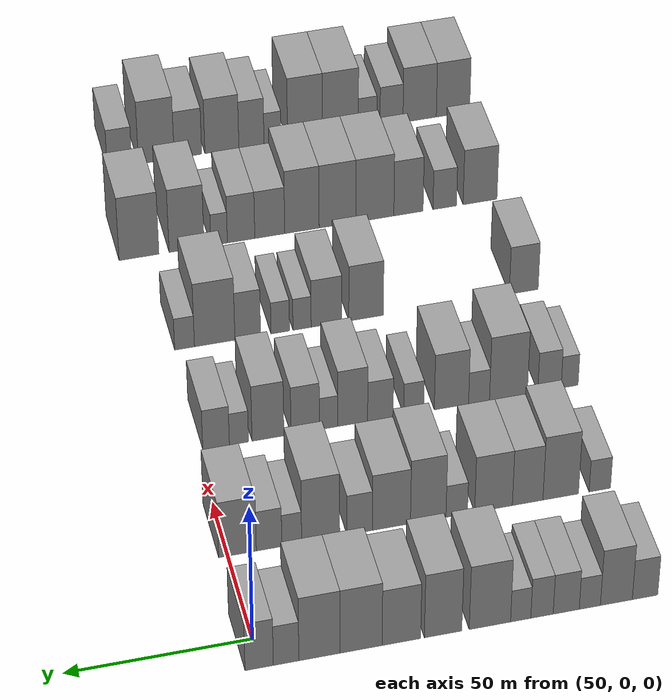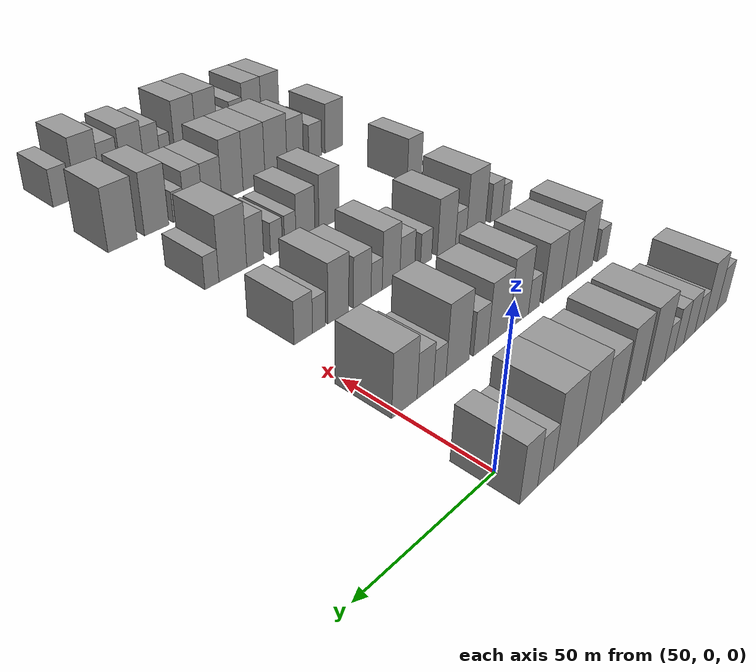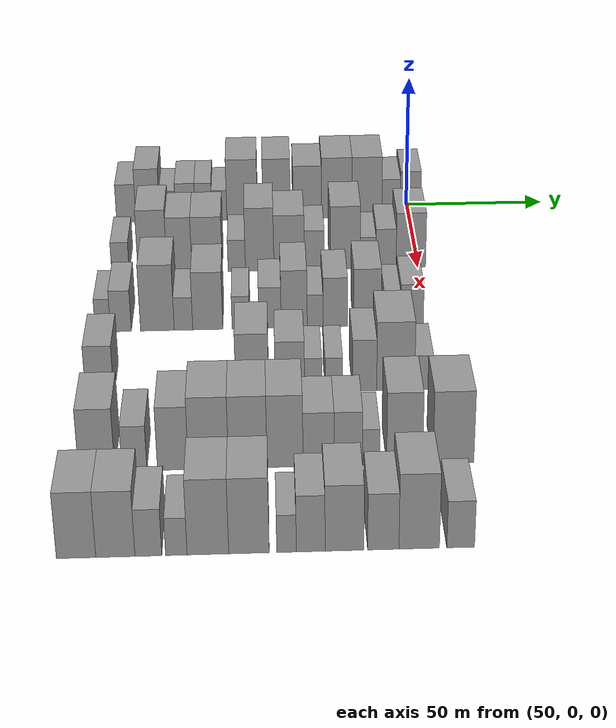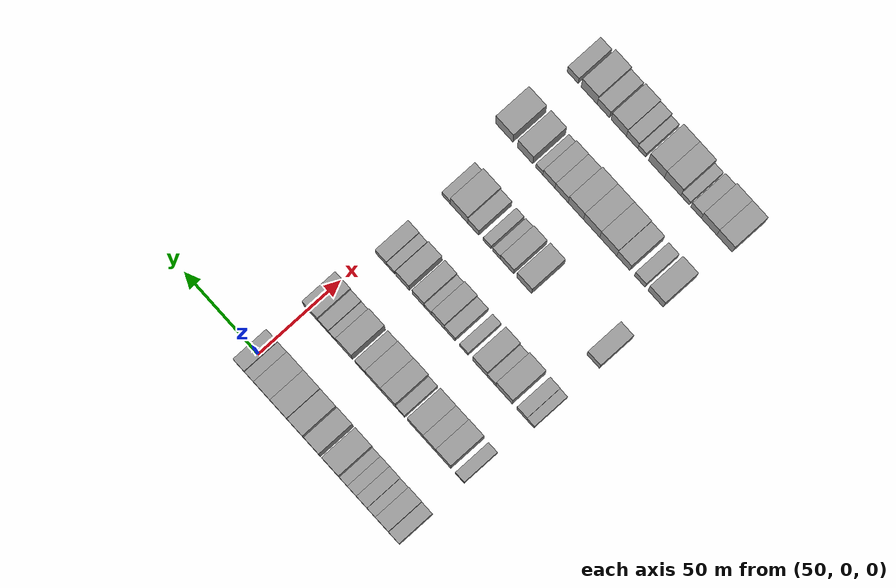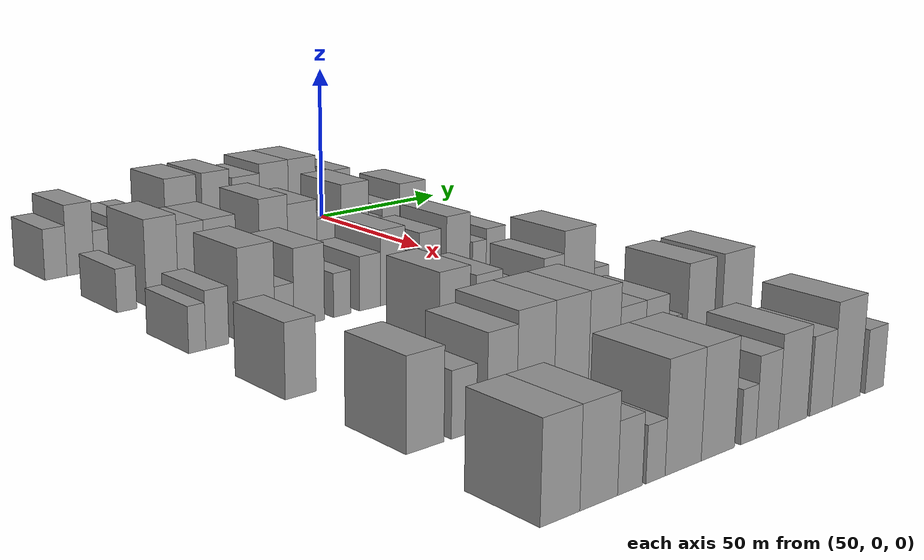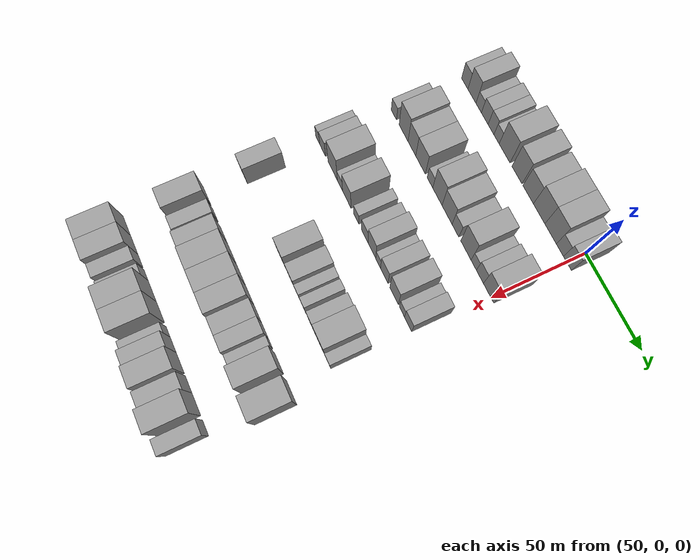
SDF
<sdf version="1.6">
 <world name="default">
  <model name="building_56">
   <static>1</static>
   <pose>50.0000 -103.0972 0 0.000000 0.000000 0.000000</pose>
   <link name="link">
    <pose>0 0 7.50 0 0 0</pose>
    <collision name="collision"><geometry><box><size>20.0000 6.9502 15.0000</size></box></geometry></collision>
    <visual name="visual">
     <cast_shadows>0</cast_shadows>
     <geometry><box><size>20.0000 6.9502 15.0000</size></box></geometry>
     <material>
      <script>
       <uri>model://grey_wall/materials/scripts</uri>
       <uri>model://grey_wall/materials/textures</uri>
       <name>vrc/grey_wall</name>
      </script>
     </material>
    </visual>
   </link>
  </model>
  <model name="building_57">
   <static>1</static>
   <pose>50.0000 -95.2676 0 0.000000 0.000000 0.000000</pose>
   <link name="link">
    <pose>0 0 10.50 0 0 0</pose>
    <collision name="collision"><geometry><box><size>20.0000 8.7089 21.0000</size></box></geometry></collision>
    <visual name="visual">
     <cast_shadows>0</cast_shadows>
     <geometry><box><size>20.0000 8.7089 21.0000</size></box></geometry>
     <material>
      <script>
       <uri>model://grey_wall/materials/scripts</uri>
       <uri>model://grey_wall/materials/textures</uri>
       <name>vrc/grey_wall</name>
      </script>
     </material>
    </visual>
   </link>
  </model>
  <model name="building_58">
   <static>1</static>
   <pose>50.0000 -88.0354 0 0.000000 0.000000 0.000000</pose>
   <link name="link">
    <pose>0 0 6.00 0 0 0</pose>
    <collision name="collision"><geometry><box><size>20.0000 5.7555 12.0000</size></box></geometry></collision>
    <visual name="visual">
     <cast_shadows>0</cast_shadows>
     <geometry><box><size>20.0000 5.7555 12.0000</size></box></geometry>
     <material>
      <script>
       <uri>model://grey_wall/materials/scripts</uri>
       <uri>model://grey_wall/materials/textures</uri>
       <name>vrc/grey_wall</name>
      </script>
     </material>
    </visual>
   </link>
  </model>
  <model name="building_59">
   <static>1</static>
   <pose>50.0000 -81.6171 0 0.000000 0.000000 0.000000</pose>
   <link name="link">
    <pose>0 0 7.50 0 0 0</pose>
    <collision name="collision"><geometry><box><size>20.0000 7.0811 15.0000</size></box></geometry></collision>
    <visual name="visual">
     <cast_shadows>0</cast_shadows>
     <geometry><box><size>20.0000 7.0811 15.0000</size></box></geometry>
     <material>
      <script>
       <uri>model://grey_wall/materials/scripts</uri>
       <uri>model://grey_wall/materials/textures</uri>
       <name>vrc/grey_wall</name>
      </script>
     </material>
    </visual>
   </link>
  </model>
  <model name="building_60">
   <static>1</static>
   <pose>50.0000 -75.0385 0 0.000000 0.000000 0.000000</pose>
   <link name="link">
    <pose>0 0 7.50 0 0 0</pose>
    <collision name="collision"><geometry><box><size>20.0000 6.0762 15.0000</size></box></geometry></collision>
    <visual name="visual">
     <cast_shadows>0</cast_shadows>
     <geometry><box><size>20.0000 6.0762 15.0000</size></box></geometry>
     <material>
      <script>
       <uri>model://grey_wall/materials/scripts</uri>
       <uri>model://grey_wall/materials/textures</uri>
       <name>vrc/grey_wall</name>
      </script>
     </material>
    </visual>
   </link>
  </model>
  <model name="building_61">
   <static>1</static>
   <pose>50.0000 -69.2660 0 0.000000 0.000000 0.000000</pose>
   <link name="link">
    <pose>0 0 6.00 0 0 0</pose>
    <collision name="collision"><geometry><box><size>20.0000 5.4688 12.0000</size></box></geometry></collision>
    <visual name="visual">
     <cast_shadows>0</cast_shadows>
     <geometry><box><size>20.0000 5.4688 12.0000</size></box></geometry>
     <material>
      <script>
       <uri>model://grey_wall/materials/scripts</uri>
       <uri>model://grey_wall/materials/textures</uri>
       <name>vrc/grey_wall</name>
      </script>
     </material>
    </visual>
   </link>
  </model>
  <model name="building_62">
   <static>1</static>
   <pose>50.0000 -60.9565 0 0.000000 0.000000 0.000000</pose>
   <link name="link">
    <pose>0 0 12.00 0 0 0</pose>
    <collision name="collision"><geometry><box><size>20.0000 11.1501 24.0000</size></box></geometry></collision>
    <visual name="visual">
     <cast_shadows>0</cast_shadows>
     <geometry><box><size>20.0000 11.1501 24.0000</size></box></geometry>
     <material>
      <script>
       <uri>model://grey_wall/materials/scripts</uri>
       <uri>model://grey_wall/materials/textures</uri>
       <name>vrc/grey_wall</name>
      </script>
     </material>
    </visual>
   </link>
  </model>
  <model name="building_63">
   <static>1</static>
   <pose>50.0000 -48.3628 0 0.000000 0.000000 0.000000</pose>
   <link name="link">
    <pose>0 0 12.00 0 0 0</pose>
    <collision name="collision"><geometry><box><size>20.0000 10.0373 24.0000</size></box></geometry></collision>
    <visual name="visual">
     <cast_shadows>0</cast_shadows>
     <geometry><box><size>20.0000 10.0373 24.0000</size></box></geometry>
     <material>
      <script>
       <uri>model://grey_wall/materials/scripts</uri>
       <uri>model://grey_wall/materials/textures</uri>
       <name>vrc/grey_wall</name>
      </script>
     </material>
    </visual>
   </link>
  </model>
  <model name="building_64">
   <static>1</static>
   <pose>50.0000 -37.1862 0 0.000000 0.000000 0.000000</pose>
   <link name="link">
    <pose>0 0 10.50 0 0 0</pose>
    <collision name="collision"><geometry><box><size>20.0000 10.3160 21.0000</size></box></geometry></collision>
    <visual name="visual">
     <cast_shadows>0</cast_shadows>
     <geometry><box><size>20.0000 10.3160 21.0000</size></box></geometry>
     <material>
      <script>
       <uri>model://grey_wall/materials/scripts</uri>
       <uri>model://grey_wall/materials/textures</uri>
       <name>vrc/grey_wall</name>
      </script>
     </material>
    </visual>
   </link>
  </model>
  <model name="building_65">
   <static>1</static>
   <pose>50.0000 -26.4524 0 0.000000 0.000000 0.000000</pose>
   <link name="link">
    <pose>0 0 12.00 0 0 0</pose>
    <collision name="collision"><geometry><box><size>20.0000 11.1516 24.0000</size></box></geometry></collision>
    <visual name="visual">
     <cast_shadows>0</cast_shadows>
     <geometry><box><size>20.0000 11.1516 24.0000</size></box></geometry>
     <material>
      <script>
       <uri>model://grey_wall/materials/scripts</uri>
       <uri>model://grey_wall/materials/textures</uri>
       <name>vrc/grey_wall</name>
      </script>
     </material>
    </visual>
   </link>
  </model>
  <model name="building_66">
   <static>1</static>
   <pose>50.0000 -15.3967 0 0.000000 0.000000 0.000000</pose>
   <link name="link">
    <pose>0 0 12.00 0 0 0</pose>
    <collision name="collision"><geometry><box><size>20.0000 10.9597 24.0000</size></box></geometry></collision>
    <visual name="visual">
     <cast_shadows>0</cast_shadows>
     <geometry><box><size>20.0000 10.9597 24.0000</size></box></geometry>
     <material>
      <script>
       <uri>model://grey_wall/materials/scripts</uri>
       <uri>model://grey_wall/materials/textures</uri>
       <name>vrc/grey_wall</name>
      </script>
     </material>
    </visual>
   </link>
  </model>
  <model name="building_67">
   <static>1</static>
   <pose>50.0000 -6.5443 0 0.000000 0.000000 0.000000</pose>
   <link name="link">
    <pose>0 0 7.50 0 0 0</pose>
    <collision name="collision"><geometry><box><size>20.0000 6.7450 15.0000</size></box></geometry></collision>
    <visual name="visual">
     <cast_shadows>0</cast_shadows>
     <geometry><box><size>20.0000 6.7450 15.0000</size></box></geometry>
     <material>
      <script>
       <uri>model://grey_wall/materials/scripts</uri>
       <uri>model://grey_wall/materials/textures</uri>
       <name>vrc/grey_wall</name>
      </script>
     </material>
    </visual>
   </link>
  </model>
  <model name="building_68">
   <static>1</static>
   <pose>50.0000 0.5645 0 0.000000 0.000000 0.000000</pose>
   <link name="link">
    <pose>0 0 9.00 0 0 0</pose>
    <collision name="collision"><geometry><box><size>20.0000 7.4726 18.0000</size></box></geometry></collision>
    <visual name="visual">
     <cast_shadows>0</cast_shadows>
     <geometry><box><size>20.0000 7.4726 18.0000</size></box></geometry>
     <material>
      <script>
       <uri>model://grey_wall/materials/scripts</uri>
       <uri>model://grey_wall/materials/textures</uri>
       <name>vrc/grey_wall</name>
      </script>
     </material>
    </visual>
   </link>
  </model>
  <model name="building_200">
   <static>1</static>
   <pose>90.0000 -102.6049 0 0.000000 0.000000 0.000000</pose>
   <link name="link">
    <pose>0 0 6.00 0 0 0</pose>
    <collision name="collision"><geometry><box><size>20.0000 5.9962 12.0000</size></box></geometry></collision>
    <visual name="visual">
     <cast_shadows>0</cast_shadows>
     <geometry><box><size>20.0000 5.9962 12.0000</size></box></geometry>
     <material>
      <script>
       <uri>model://grey_wall/materials/scripts</uri>
       <uri>model://grey_wall/materials/textures</uri>
       <name>vrc/grey_wall</name>
      </script>
     </material>
    </visual>
   </link>
  </model>
  <model name="building_201">
   <static>1</static>
   <pose>90.0000 -91.6296 0 0.000000 0.000000 0.000000</pose>
   <link name="link">
    <pose>0 0 12.00 0 0 0</pose>
    <collision name="collision"><geometry><box><size>20.0000 9.9545 24.0000</size></box></geometry></collision>
    <visual name="visual">
     <cast_shadows>0</cast_shadows>
     <geometry><box><size>20.0000 9.9545 24.0000</size></box></geometry>
     <material>
      <script>
       <uri>model://grey_wall/materials/scripts</uri>
       <uri>model://grey_wall/materials/textures</uri>
       <name>vrc/grey_wall</name>
      </script>
     </material>
    </visual>
   </link>
  </model>
  <model name="building_202">
   <static>1</static>
   <pose>90.0000 -82.3786 0 0.000000 0.000000 0.000000</pose>
   <link name="link">
    <pose>0 0 10.50 0 0 0</pose>
    <collision name="collision"><geometry><box><size>20.0000 8.5473 21.0000</size></box></geometry></collision>
    <visual name="visual">
     <cast_shadows>0</cast_shadows>
     <geometry><box><size>20.0000 8.5473 21.0000</size></box></geometry>
     <material>
      <script>
       <uri>model://grey_wall/materials/scripts</uri>
       <uri>model://grey_wall/materials/textures</uri>
       <name>vrc/grey_wall</name>
      </script>
     </material>
    </visual>
   </link>
  </model>
  <model name="building_203">
   <static>1</static>
   <pose>90.0000 -72.8640 0 0.000000 0.000000 0.000000</pose>
   <link name="link">
    <pose>0 0 10.50 0 0 0</pose>
    <collision name="collision"><geometry><box><size>20.0000 10.4819 21.0000</size></box></geometry></collision>
    <visual name="visual">
     <cast_shadows>0</cast_shadows>
     <geometry><box><size>20.0000 10.4819 21.0000</size></box></geometry>
     <material>
      <script>
       <uri>model://grey_wall/materials/scripts</uri>
       <uri>model://grey_wall/materials/textures</uri>
       <name>vrc/grey_wall</name>
      </script>
     </material>
    </visual>
   </link>
  </model>
  <model name="building_204">
   <static>1</static>
   <pose>90.0000 -62.6408 0 0.000000 0.000000 0.000000</pose>
   <link name="link">
    <pose>0 0 6.00 0 0 0</pose>
    <collision name="collision"><geometry><box><size>20.0000 5.9647 12.0000</size></box></geometry></collision>
    <visual name="visual">
     <cast_shadows>0</cast_shadows>
     <geometry><box><size>20.0000 5.9647 12.0000</size></box></geometry>
     <material>
      <script>
       <uri>model://grey_wall/materials/scripts</uri>
       <uri>model://grey_wall/materials/textures</uri>
       <name>vrc/grey_wall</name>
      </script>
     </material>
    </visual>
   </link>
  </model>
  <model name="building_205">
   <static>1</static>
   <pose>90.0000 -54.7404 0 0.000000 0.000000 0.000000</pose>
   <link name="link">
    <pose>0 0 12.00 0 0 0</pose>
    <collision name="collision"><geometry><box><size>20.0000 9.8361 24.0000</size></box></geometry></collision>
    <visual name="visual">
     <cast_shadows>0</cast_shadows>
     <geometry><box><size>20.0000 9.8361 24.0000</size></box></geometry>
     <material>
      <script>
       <uri>model://grey_wall/materials/scripts</uri>
       <uri>model://grey_wall/materials/textures</uri>
       <name>vrc/grey_wall</name>
      </script>
     </material>
    </visual>
   </link>
  </model>
  <model name="building_206">
   <static>1</static>
   <pose>90.0000 -44.5728 0 0.000000 0.000000 0.000000</pose>
   <link name="link">
    <pose>0 0 10.50 0 0 0</pose>
    <collision name="collision"><geometry><box><size>20.0000 10.4991 21.0000</size></box></geometry></collision>
    <visual name="visual">
     <cast_shadows>0</cast_shadows>
     <geometry><box><size>20.0000 10.4991 21.0000</size></box></geometry>
     <material>
      <script>
       <uri>model://grey_wall/materials/scripts</uri>
       <uri>model://grey_wall/materials/textures</uri>
       <name>vrc/grey_wall</name>
      </script>
     </material>
    </visual>
   </link>
  </model>
  <model name="building_207">
   <static>1</static>
   <pose>90.0000 -35.8467 0 0.000000 0.000000 0.000000</pose>
   <link name="link">
    <pose>0 0 7.50 0 0 0</pose>
    <collision name="collision"><geometry><box><size>20.0000 6.9532 15.0000</size></box></geometry></collision>
    <visual name="visual">
     <cast_shadows>0</cast_shadows>
     <geometry><box><size>20.0000 6.9532 15.0000</size></box></geometry>
     <material>
      <script>
       <uri>model://grey_wall/materials/scripts</uri>
       <uri>model://grey_wall/materials/textures</uri>
       <name>vrc/grey_wall</name>
      </script>
     </material>
    </visual>
   </link>
  </model>
  <model name="building_208">
   <static>1</static>
   <pose>90.0000 -25.1551 0 0.000000 0.000000 0.000000</pose>
   <link name="link">
    <pose>0 0 12.00 0 0 0</pose>
    <collision name="collision"><geometry><box><size>20.0000 10.4300 24.0000</size></box></geometry></collision>
    <visual name="visual">
     <cast_shadows>0</cast_shadows>
     <geometry><box><size>20.0000 10.4300 24.0000</size></box></geometry>
     <material>
      <script>
       <uri>model://grey_wall/materials/scripts</uri>
       <uri>model://grey_wall/materials/textures</uri>
       <name>vrc/grey_wall</name>
      </script>
     </material>
    </visual>
   </link>
  </model>
  <model name="building_209">
   <static>1</static>
   <pose>90.0000 -17.2387 0 0.000000 0.000000 0.000000</pose>
   <link name="link">
    <pose>0 0 6.00 0 0 0</pose>
    <collision name="collision"><geometry><box><size>20.0000 5.4028 12.0000</size></box></geometry></collision>
    <visual name="visual">
     <cast_shadows>0</cast_shadows>
     <geometry><box><size>20.0000 5.4028 12.0000</size></box></geometry>
     <material>
      <script>
       <uri>model://grey_wall/materials/scripts</uri>
       <uri>model://grey_wall/materials/textures</uri>
       <name>vrc/grey_wall</name>
      </script>
     </material>
    </visual>
   </link>
  </model>
  <model name="building_210">
   <static>1</static>
   <pose>90.0000 -11.0630 0 0.000000 0.000000 0.000000</pose>
   <link name="link">
    <pose>0 0 7.50 0 0 0</pose>
    <collision name="collision"><geometry><box><size>20.0000 6.9486 15.0000</size></box></geometry></collision>
    <visual name="visual">
     <cast_shadows>0</cast_shadows>
     <geometry><box><size>20.0000 6.9486 15.0000</size></box></geometry>
     <material>
      <script>
       <uri>model://grey_wall/materials/scripts</uri>
       <uri>model://grey_wall/materials/textures</uri>
       <name>vrc/grey_wall</name>
      </script>
     </material>
    </visual>
   </link>
  </model>
  <model name="building_211">
   <static>1</static>
   <pose>90.0000 -2.4763 0 0.000000 0.000000 0.000000</pose>
   <link name="link">
    <pose>0 0 10.50 0 0 0</pose>
    <collision name="collision"><geometry><box><size>20.0000 10.2248 21.0000</size></box></geometry></collision>
    <visual name="visual">
     <cast_shadows>0</cast_shadows>
     <geometry><box><size>20.0000 10.2248 21.0000</size></box></geometry>
     <material>
      <script>
       <uri>model://grey_wall/materials/scripts</uri>
       <uri>model://grey_wall/materials/textures</uri>
       <name>vrc/grey_wall</name>
      </script>
     </material>
    </visual>
   </link>
  </model>
  <model name="building_336">
   <static>1</static>
   <pose>130.0000 -105.7095 0 0.000000 0.000000 0.000000</pose>
   <link name="link">
    <pose>0 0 6.00 0 0 0</pose>
    <collision name="collision"><geometry><box><size>20.0000 4.9028 12.0000</size></box></geometry></collision>
    <visual name="visual">
     <cast_shadows>0</cast_shadows>
     <geometry><box><size>20.0000 4.9028 12.0000</size></box></geometry>
     <material>
      <script>
       <uri>model://grey_wall/materials/scripts</uri>
       <uri>model://grey_wall/materials/textures</uri>
       <name>vrc/grey_wall</name>
      </script>
     </material>
    </visual>
   </link>
  </model>
  <model name="building_337">
   <static>1</static>
   <pose>130.0000 -99.8925 0 0.000000 0.000000 0.000000</pose>
   <link name="link">
    <pose>0 0 7.50 0 0 0</pose>
    <collision name="collision"><geometry><box><size>20.0000 6.7311 15.0000</size></box></geometry></collision>
    <visual name="visual">
     <cast_shadows>0</cast_shadows>
     <geometry><box><size>20.0000 6.7311 15.0000</size></box></geometry>
     <material>
      <script>
       <uri>model://grey_wall/materials/scripts</uri>
       <uri>model://grey_wall/materials/textures</uri>
       <name>vrc/grey_wall</name>
      </script>
     </material>
    </visual>
   </link>
  </model>
  <model name="building_338">
   <static>1</static>
   <pose>130.0000 -88.0814 0 0.000000 0.000000 0.000000</pose>
   <link name="link">
    <pose>0 0 12.00 0 0 0</pose>
    <collision name="collision"><geometry><box><size>20.0000 10.8910 24.0000</size></box></geometry></collision>
    <visual name="visual">
     <cast_shadows>0</cast_shadows>
     <geometry><box><size>20.0000 10.8910 24.0000</size></box></geometry>
     <material>
      <script>
       <uri>model://grey_wall/materials/scripts</uri>
       <uri>model://grey_wall/materials/textures</uri>
       <name>vrc/grey_wall</name>
      </script>
     </material>
    </visual>
   </link>
  </model>
  <model name="building_339">
   <static>1</static>
   <pose>130.0000 -79.6409 0 0.000000 0.000000 0.000000</pose>
   <link name="link">
    <pose>0 0 6.00 0 0 0</pose>
    <collision name="collision"><geometry><box><size>20.0000 5.9900 12.0000</size></box></geometry></collision>
    <visual name="visual">
     <cast_shadows>0</cast_shadows>
     <geometry><box><size>20.0000 5.9900 12.0000</size></box></geometry>
     <material>
      <script>
       <uri>model://grey_wall/materials/scripts</uri>
       <uri>model://grey_wall/materials/textures</uri>
       <name>vrc/grey_wall</name>
      </script>
     </material>
    </visual>
   </link>
  </model>
  <model name="building_340">
   <static>1</static>
   <pose>130.0000 -71.7506 0 0.000000 0.000000 0.000000</pose>
   <link name="link">
    <pose>0 0 10.50 0 0 0</pose>
    <collision name="collision"><geometry><box><size>20.0000 9.7905 21.0000</size></box></geometry></collision>
    <visual name="visual">
     <cast_shadows>0</cast_shadows>
     <geometry><box><size>20.0000 9.7905 21.0000</size></box></geometry>
     <material>
      <script>
       <uri>model://grey_wall/materials/scripts</uri>
       <uri>model://grey_wall/materials/textures</uri>
       <name>vrc/grey_wall</name>
      </script>
     </material>
    </visual>
   </link>
  </model>
  <model name="building_341">
   <static>1</static>
   <pose>130.0000 -60.9967 0 0.000000 0.000000 0.000000</pose>
   <link name="link">
    <pose>0 0 6.00 0 0 0</pose>
    <collision name="collision"><geometry><box><size>20.0000 5.7175 12.0000</size></box></geometry></collision>
    <visual name="visual">
     <cast_shadows>0</cast_shadows>
     <geometry><box><size>20.0000 5.7175 12.0000</size></box></geometry>
     <material>
      <script>
       <uri>model://grey_wall/materials/scripts</uri>
       <uri>model://grey_wall/materials/textures</uri>
       <name>vrc/grey_wall</name>
      </script>
     </material>
    </visual>
   </link>
  </model>
  <model name="building_342">
   <static>1</static>
   <pose>130.0000 -51.5141 0 0.000000 0.000000 0.000000</pose>
   <link name="link">
    <pose>0 0 7.50 0 0 0</pose>
    <collision name="collision"><geometry><box><size>20.0000 7.2476 15.0000</size></box></geometry></collision>
    <visual name="visual">
     <cast_shadows>0</cast_shadows>
     <geometry><box><size>20.0000 7.2476 15.0000</size></box></geometry>
     <material>
      <script>
       <uri>model://grey_wall/materials/scripts</uri>
       <uri>model://grey_wall/materials/textures</uri>
       <name>vrc/grey_wall</name>
      </script>
     </material>
    </visual>
   </link>
  </model>
  <model name="building_343">
   <static>1</static>
   <pose>130.0000 -43.6612 0 0.000000 0.000000 0.000000</pose>
   <link name="link">
    <pose>0 0 10.50 0 0 0</pose>
    <collision name="collision"><geometry><box><size>20.0000 8.4582 21.0000</size></box></geometry></collision>
    <visual name="visual">
     <cast_shadows>0</cast_shadows>
     <geometry><box><size>20.0000 8.4582 21.0000</size></box></geometry>
     <material>
      <script>
       <uri>model://grey_wall/materials/scripts</uri>
       <uri>model://grey_wall/materials/textures</uri>
       <name>vrc/grey_wall</name>
      </script>
     </material>
    </visual>
   </link>
  </model>
  <model name="building_344">
   <static>1</static>
   <pose>130.0000 -36.8433 0 0.000000 0.000000 0.000000</pose>
   <link name="link">
    <pose>0 0 6.00 0 0 0</pose>
    <collision name="collision"><geometry><box><size>20.0000 5.1778 12.0000</size></box></geometry></collision>
    <visual name="visual">
     <cast_shadows>0</cast_shadows>
     <geometry><box><size>20.0000 5.1778 12.0000</size></box></geometry>
     <material>
      <script>
       <uri>model://grey_wall/materials/scripts</uri>
       <uri>model://grey_wall/materials/textures</uri>
       <name>vrc/grey_wall</name>
      </script>
     </material>
    </visual>
   </link>
  </model>
  <model name="building_345">
   <static>1</static>
   <pose>130.0000 -30.2554 0 0.000000 0.000000 0.000000</pose>
   <link name="link">
    <pose>0 0 9.00 0 0 0</pose>
    <collision name="collision"><geometry><box><size>20.0000 7.9979 18.0000</size></box></geometry></collision>
    <visual name="visual">
     <cast_shadows>0</cast_shadows>
     <geometry><box><size>20.0000 7.9979 18.0000</size></box></geometry>
     <material>
      <script>
       <uri>model://grey_wall/materials/scripts</uri>
       <uri>model://grey_wall/materials/textures</uri>
       <name>vrc/grey_wall</name>
      </script>
     </material>
    </visual>
   </link>
  </model>
  <model name="building_346">
   <static>1</static>
   <pose>130.0000 -19.7892 0 0.000000 0.000000 0.000000</pose>
   <link name="link">
    <pose>0 0 10.50 0 0 0</pose>
    <collision name="collision"><geometry><box><size>20.0000 8.9345 21.0000</size></box></geometry></collision>
    <visual name="visual">
     <cast_shadows>0</cast_shadows>
     <geometry><box><size>20.0000 8.9345 21.0000</size></box></geometry>
     <material>
      <script>
       <uri>model://grey_wall/materials/scripts</uri>
       <uri>model://grey_wall/materials/textures</uri>
       <name>vrc/grey_wall</name>
      </script>
     </material>
    </visual>
   </link>
  </model>
  <model name="building_347">
   <static>1</static>
   <pose>130.0000 -11.6456 0 0.000000 0.000000 0.000000</pose>
   <link name="link">
    <pose>0 0 6.00 0 0 0</pose>
    <collision name="collision"><geometry><box><size>20.0000 5.3526 12.0000</size></box></geometry></collision>
    <visual name="visual">
     <cast_shadows>0</cast_shadows>
     <geometry><box><size>20.0000 5.3526 12.0000</size></box></geometry>
     <material>
      <script>
       <uri>model://grey_wall/materials/scripts</uri>
       <uri>model://grey_wall/materials/textures</uri>
       <name>vrc/grey_wall</name>
      </script>
     </material>
    </visual>
   </link>
  </model>
  <model name="building_348">
   <static>1</static>
   <pose>130.0000 -5.2496 0 0.000000 0.000000 0.000000</pose>
   <link name="link">
    <pose>0 0 7.50 0 0 0</pose>
    <collision name="collision"><geometry><box><size>20.0000 7.4394 15.0000</size></box></geometry></collision>
    <visual name="visual">
     <cast_shadows>0</cast_shadows>
     <geometry><box><size>20.0000 7.4394 15.0000</size></box></geometry>
     <material>
      <script>
       <uri>model://grey_wall/materials/scripts</uri>
       <uri>model://grey_wall/materials/textures</uri>
       <name>vrc/grey_wall</name>
      </script>
     </material>
    </visual>
   </link>
  </model>
  <model name="building_475">
   <static>1</static>
   <pose>170.0000 -103.6746 0 0.000000 0.000000 0.000000</pose>
   <link name="link">
    <pose>0 0 9.00 0 0 0</pose>
    <collision name="collision"><geometry><box><size>20.0000 8.5343 18.0000</size></box></geometry></collision>
    <visual name="visual">
     <cast_shadows>0</cast_shadows>
     <geometry><box><size>20.0000 8.5343 18.0000</size></box></geometry>
     <material>
      <script>
       <uri>model://grey_wall/materials/scripts</uri>
       <uri>model://grey_wall/materials/textures</uri>
       <name>vrc/grey_wall</name>
      </script>
     </material>
    </visual>
   </link>
  </model>
  <model name="building_476">
   <static>1</static>
   <pose>170.0000 -57.3019 0 0.000000 0.000000 0.000000</pose>
   <link name="link">
    <pose>0 0 10.50 0 0 0</pose>
    <collision name="collision"><geometry><box><size>20.0000 10.0704 21.0000</size></box></geometry></collision>
    <visual name="visual">
     <cast_shadows>0</cast_shadows>
     <geometry><box><size>20.0000 10.0704 21.0000</size></box></geometry>
     <material>
      <script>
       <uri>model://grey_wall/materials/scripts</uri>
       <uri>model://grey_wall/materials/textures</uri>
       <name>vrc/grey_wall</name>
      </script>
     </material>
    </visual>
   </link>
  </model>
  <model name="building_477">
   <static>1</static>
   <pose>170.0000 -45.7867 0 0.000000 0.000000 0.000000</pose>
   <link name="link">
    <pose>0 0 9.00 0 0 0</pose>
    <collision name="collision"><geometry><box><size>20.0000 8.9599 18.0000</size></box></geometry></collision>
    <visual name="visual">
     <cast_shadows>0</cast_shadows>
     <geometry><box><size>20.0000 8.9599 18.0000</size></box></geometry>
     <material>
      <script>
       <uri>model://grey_wall/materials/scripts</uri>
       <uri>model://grey_wall/materials/textures</uri>
       <name>vrc/grey_wall</name>
      </script>
     </material>
    </visual>
   </link>
  </model>
  <model name="building_478">
   <static>1</static>
   <pose>170.0000 -38.6701 0 0.000000 0.000000 0.000000</pose>
   <link name="link">
    <pose>0 0 6.00 0 0 0</pose>
    <collision name="collision"><geometry><box><size>20.0000 5.2733 12.0000</size></box></geometry></collision>
    <visual name="visual">
     <cast_shadows>0</cast_shadows>
     <geometry><box><size>20.0000 5.2733 12.0000</size></box></geometry>
     <material>
      <script>
       <uri>model://grey_wall/materials/scripts</uri>
       <uri>model://grey_wall/materials/textures</uri>
       <name>vrc/grey_wall</name>
      </script>
     </material>
    </visual>
   </link>
  </model>
  <model name="building_479">
   <static>1</static>
   <pose>170.0000 -32.3515 0 0.000000 0.000000 0.000000</pose>
   <link name="link">
    <pose>0 0 6.00 0 0 0</pose>
    <collision name="collision"><geometry><box><size>20.0000 5.3639 12.0000</size></box></geometry></collision>
    <visual name="visual">
     <cast_shadows>0</cast_shadows>
     <geometry><box><size>20.0000 5.3639 12.0000</size></box></geometry>
     <material>
      <script>
       <uri>model://grey_wall/materials/scripts</uri>
       <uri>model://grey_wall/materials/textures</uri>
       <name>vrc/grey_wall</name>
      </script>
     </material>
    </visual>
   </link>
  </model>
  <model name="building_480">
   <static>1</static>
   <pose>170.0000 -22.9634 0 0.000000 0.000000 0.000000</pose>
   <link name="link">
    <pose>0 0 9.00 0 0 0</pose>
    <collision name="collision"><geometry><box><size>20.0000 7.4122 18.0000</size></box></geometry></collision>
    <visual name="visual">
     <cast_shadows>0</cast_shadows>
     <geometry><box><size>20.0000 7.4122 18.0000</size></box></geometry>
     <material>
      <script>
       <uri>model://grey_wall/materials/scripts</uri>
       <uri>model://grey_wall/materials/textures</uri>
       <name>vrc/grey_wall</name>
      </script>
     </material>
    </visual>
   </link>
  </model>
  <model name="building_481">
   <static>1</static>
   <pose>170.0000 -13.4346 0 0.000000 0.000000 0.000000</pose>
   <link name="link">
    <pose>0 0 12.00 0 0 0</pose>
    <collision name="collision"><geometry><box><size>20.0000 11.6454 24.0000</size></box></geometry></collision>
    <visual name="visual">
     <cast_shadows>0</cast_shadows>
     <geometry><box><size>20.0000 11.6454 24.0000</size></box></geometry>
     <material>
      <script>
       <uri>model://grey_wall/materials/scripts</uri>
       <uri>model://grey_wall/materials/textures</uri>
       <name>vrc/grey_wall</name>
      </script>
     </material>
    </visual>
   </link>
  </model>
  <model name="building_482">
   <static>1</static>
   <pose>170.0000 -4.7738 0 0.000000 0.000000 0.000000</pose>
   <link name="link">
    <pose>0 0 6.00 0 0 0</pose>
    <collision name="collision"><geometry><box><size>20.0000 5.6762 12.0000</size></box></geometry></collision>
    <visual name="visual">
     <cast_shadows>0</cast_shadows>
     <geometry><box><size>20.0000 5.6762 12.0000</size></box></geometry>
     <material>
      <script>
       <uri>model://grey_wall/materials/scripts</uri>
       <uri>model://grey_wall/materials/textures</uri>
       <name>vrc/grey_wall</name>
      </script>
     </material>
    </visual>
   </link>
  </model>
  <model name="building_613">
   <static>1</static>
   <pose>210.0000 -101.5706 0 0.000000 0.000000 0.000000</pose>
   <link name="link">
    <pose>0 0 10.50 0 0 0</pose>
    <collision name="collision"><geometry><box><size>20.0000 10.2671 21.0000</size></box></geometry></collision>
    <visual name="visual">
     <cast_shadows>0</cast_shadows>
     <geometry><box><size>20.0000 10.2671 21.0000</size></box></geometry>
     <material>
      <script>
       <uri>model://grey_wall/materials/scripts</uri>
       <uri>model://grey_wall/materials/textures</uri>
       <name>vrc/grey_wall</name>
      </script>
     </material>
    </visual>
   </link>
  </model>
  <model name="building_614">
   <static>1</static>
   <pose>210.0000 -90.8751 0 0.000000 0.000000 0.000000</pose>
   <link name="link">
    <pose>0 0 7.50 0 0 0</pose>
    <collision name="collision"><geometry><box><size>20.0000 7.1238 15.0000</size></box></geometry></collision>
    <visual name="visual">
     <cast_shadows>0</cast_shadows>
     <geometry><box><size>20.0000 7.1238 15.0000</size></box></geometry>
     <material>
      <script>
       <uri>model://grey_wall/materials/scripts</uri>
       <uri>model://grey_wall/materials/textures</uri>
       <name>vrc/grey_wall</name>
      </script>
     </material>
    </visual>
   </link>
  </model>
  <model name="building_615">
   <static>1</static>
   <pose>210.0000 -79.9090 0 0.000000 0.000000 0.000000</pose>
   <link name="link">
    <pose>0 0 10.50 0 0 0</pose>
    <collision name="collision"><geometry><box><size>20.0000 8.8086 21.0000</size></box></geometry></collision>
    <visual name="visual">
     <cast_shadows>0</cast_shadows>
     <geometry><box><size>20.0000 8.8086 21.0000</size></box></geometry>
     <material>
      <script>
       <uri>model://grey_wall/materials/scripts</uri>
       <uri>model://grey_wall/materials/textures</uri>
       <name>vrc/grey_wall</name>
      </script>
     </material>
    </visual>
   </link>
  </model>
  <model name="building_616">
   <static>1</static>
   <pose>210.0000 -69.7845 0 0.000000 0.000000 0.000000</pose>
   <link name="link">
    <pose>0 0 12.00 0 0 0</pose>
    <collision name="collision"><geometry><box><size>20.0000 11.4404 24.0000</size></box></geometry></collision>
    <visual name="visual">
     <cast_shadows>0</cast_shadows>
     <geometry><box><size>20.0000 11.4404 24.0000</size></box></geometry>
     <material>
      <script>
       <uri>model://grey_wall/materials/scripts</uri>
       <uri>model://grey_wall/materials/textures</uri>
       <name>vrc/grey_wall</name>
      </script>
     </material>
    </visual>
   </link>
  </model>
  <model name="building_617">
   <static>1</static>
   <pose>210.0000 -58.5659 0 0.000000 0.000000 0.000000</pose>
   <link name="link">
    <pose>0 0 12.00 0 0 0</pose>
    <collision name="collision"><geometry><box><size>20.0000 10.9968 24.0000</size></box></geometry></collision>
    <visual name="visual">
     <cast_shadows>0</cast_shadows>
     <geometry><box><size>20.0000 10.9968 24.0000</size></box></geometry>
     <material>
      <script>
       <uri>model://grey_wall/materials/scripts</uri>
       <uri>model://grey_wall/materials/textures</uri>
       <name>vrc/grey_wall</name>
      </script>
     </material>
    </visual>
   </link>
  </model>
  <model name="building_618">
   <static>1</static>
   <pose>210.0000 -47.9330 0 0.000000 0.000000 0.000000</pose>
   <link name="link">
    <pose>0 0 12.00 0 0 0</pose>
    <collision name="collision"><geometry><box><size>20.0000 10.2688 24.0000</size></box></geometry></collision>
    <visual name="visual">
     <cast_shadows>0</cast_shadows>
     <geometry><box><size>20.0000 10.2688 24.0000</size></box></geometry>
     <material>
      <script>
       <uri>model://grey_wall/materials/scripts</uri>
       <uri>model://grey_wall/materials/textures</uri>
       <name>vrc/grey_wall</name>
      </script>
     </material>
    </visual>
   </link>
  </model>
  <model name="building_619">
   <static>1</static>
   <pose>210.0000 -38.3495 0 0.000000 0.000000 0.000000</pose>
   <link name="link">
    <pose>0 0 9.00 0 0 0</pose>
    <collision name="collision"><geometry><box><size>20.0000 8.8983 18.0000</size></box></geometry></collision>
    <visual name="visual">
     <cast_shadows>0</cast_shadows>
     <geometry><box><size>20.0000 8.8983 18.0000</size></box></geometry>
     <material>
      <script>
       <uri>model://grey_wall/materials/scripts</uri>
       <uri>model://grey_wall/materials/textures</uri>
       <name>vrc/grey_wall</name>
      </script>
     </material>
    </visual>
   </link>
  </model>
  <model name="building_620">
   <static>1</static>
   <pose>210.0000 -29.8252 0 0.000000 0.000000 0.000000</pose>
   <link name="link">
    <pose>0 0 9.00 0 0 0</pose>
    <collision name="collision"><geometry><box><size>20.0000 8.1503 18.0000</size></box></geometry></collision>
    <visual name="visual">
     <cast_shadows>0</cast_shadows>
     <geometry><box><size>20.0000 8.1503 18.0000</size></box></geometry>
     <material>
      <script>
       <uri>model://grey_wall/materials/scripts</uri>
       <uri>model://grey_wall/materials/textures</uri>
       <name>vrc/grey_wall</name>
      </script>
     </material>
    </visual>
   </link>
  </model>
  <model name="building_621">
   <static>1</static>
   <pose>210.0000 -23.3096 0 0.000000 0.000000 0.000000</pose>
   <link name="link">
    <pose>0 0 6.00 0 0 0</pose>
    <collision name="collision"><geometry><box><size>20.0000 4.8808 12.0000</size></box></geometry></collision>
    <visual name="visual">
     <cast_shadows>0</cast_shadows>
     <geometry><box><size>20.0000 4.8808 12.0000</size></box></geometry>
     <material>
      <script>
       <uri>model://grey_wall/materials/scripts</uri>
       <uri>model://grey_wall/materials/textures</uri>
       <name>vrc/grey_wall</name>
      </script>
     </material>
    </visual>
   </link>
  </model>
  <model name="building_622">
   <static>1</static>
   <pose>210.0000 -13.7022 0 0.000000 0.000000 0.000000</pose>
   <link name="link">
    <pose>0 0 12.00 0 0 0</pose>
    <collision name="collision"><geometry><box><size>20.0000 10.3340 24.0000</size></box></geometry></collision>
    <visual name="visual">
     <cast_shadows>0</cast_shadows>
     <geometry><box><size>20.0000 10.3340 24.0000</size></box></geometry>
     <material>
      <script>
       <uri>model://grey_wall/materials/scripts</uri>
       <uri>model://grey_wall/materials/textures</uri>
       <name>vrc/grey_wall</name>
      </script>
     </material>
    </visual>
   </link>
  </model>
  <model name="building_623">
   <static>1</static>
   <pose>210.0000 0.3251 0 0.000000 0.000000 0.000000</pose>
   <link name="link">
    <pose>0 0 12.00 0 0 0</pose>
    <collision name="collision"><geometry><box><size>20.0000 11.7206 24.0000</size></box></geometry></collision>
    <visual name="visual">
     <cast_shadows>0</cast_shadows>
     <geometry><box><size>20.0000 11.7206 24.0000</size></box></geometry>
     <material>
      <script>
       <uri>model://grey_wall/materials/scripts</uri>
       <uri>model://grey_wall/materials/textures</uri>
       <name>vrc/grey_wall</name>
      </script>
     </material>
    </visual>
   </link>
  </model>
  <model name="building_746">
   <static>1</static>
   <pose>250.0000 -103.9392 0 0.000000 0.000000 0.000000</pose>
   <link name="link">
    <pose>0 0 10.50 0 0 0</pose>
    <collision name="collision"><geometry><box><size>20.0000 10.3762 21.0000</size></box></geometry></collision>
    <visual name="visual">
     <cast_shadows>0</cast_shadows>
     <geometry><box><size>20.0000 10.3762 21.0000</size></box></geometry>
     <material>
      <script>
       <uri>model://grey_wall/materials/scripts</uri>
       <uri>model://grey_wall/materials/textures</uri>
       <name>vrc/grey_wall</name>
      </script>
     </material>
    </visual>
   </link>
  </model>
  <model name="building_747">
   <static>1</static>
   <pose>250.0000 -93.5758 0 0.000000 0.000000 0.000000</pose>
   <link name="link">
    <pose>0 0 10.50 0 0 0</pose>
    <collision name="collision"><geometry><box><size>20.0000 10.3505 21.0000</size></box></geometry></collision>
    <visual name="visual">
     <cast_shadows>0</cast_shadows>
     <geometry><box><size>20.0000 10.3505 21.0000</size></box></geometry>
     <material>
      <script>
       <uri>model://grey_wall/materials/scripts</uri>
       <uri>model://grey_wall/materials/textures</uri>
       <name>vrc/grey_wall</name>
      </script>
     </material>
    </visual>
   </link>
  </model>
  <model name="building_748">
   <static>1</static>
   <pose>250.0000 -84.8516 0 0.000000 0.000000 0.000000</pose>
   <link name="link">
    <pose>0 0 7.50 0 0 0</pose>
    <collision name="collision"><geometry><box><size>20.0000 7.0980 15.0000</size></box></geometry></collision>
    <visual name="visual">
     <cast_shadows>0</cast_shadows>
     <geometry><box><size>20.0000 7.0980 15.0000</size></box></geometry>
     <material>
      <script>
       <uri>model://grey_wall/materials/scripts</uri>
       <uri>model://grey_wall/materials/textures</uri>
       <name>vrc/grey_wall</name>
      </script>
     </material>
    </visual>
   </link>
  </model>
  <model name="building_749">
   <static>1</static>
   <pose>250.0000 -77.4580 0 0.000000 0.000000 0.000000</pose>
   <link name="link">
    <pose>0 0 6.00 0 0 0</pose>
    <collision name="collision"><geometry><box><size>20.0000 5.6893 12.0000</size></box></geometry></collision>
    <visual name="visual">
     <cast_shadows>0</cast_shadows>
     <geometry><box><size>20.0000 5.6893 12.0000</size></box></geometry>
     <material>
      <script>
       <uri>model://grey_wall/materials/scripts</uri>
       <uri>model://grey_wall/materials/textures</uri>
       <name>vrc/grey_wall</name>
      </script>
     </material>
    </visual>
   </link>
  </model>
  <model name="building_750">
   <static>1</static>
   <pose>250.0000 -69.0878 0 0.000000 0.000000 0.000000</pose>
   <link name="link">
    <pose>0 0 12.00 0 0 0</pose>
    <collision name="collision"><geometry><box><size>20.0000 11.0510 24.0000</size></box></geometry></collision>
    <visual name="visual">
     <cast_shadows>0</cast_shadows>
     <geometry><box><size>20.0000 11.0510 24.0000</size></box></geometry>
     <material>
      <script>
       <uri>model://grey_wall/materials/scripts</uri>
       <uri>model://grey_wall/materials/textures</uri>
       <name>vrc/grey_wall</name>
      </script>
     </material>
    </visual>
   </link>
  </model>
  <model name="building_751">
   <static>1</static>
   <pose>250.0000 -58.1897 0 0.000000 0.000000 0.000000</pose>
   <link name="link">
    <pose>0 0 12.00 0 0 0</pose>
    <collision name="collision"><geometry><box><size>20.0000 10.7452 24.0000</size></box></geometry></collision>
    <visual name="visual">
     <cast_shadows>0</cast_shadows>
     <geometry><box><size>20.0000 10.7452 24.0000</size></box></geometry>
     <material>
      <script>
       <uri>model://grey_wall/materials/scripts</uri>
       <uri>model://grey_wall/materials/textures</uri>
       <name>vrc/grey_wall</name>
      </script>
     </material>
    </visual>
   </link>
  </model>
  <model name="building_752">
   <static>1</static>
   <pose>250.0000 -48.2154 0 0.000000 0.000000 0.000000</pose>
   <link name="link">
    <pose>0 0 6.00 0 0 0</pose>
    <collision name="collision"><geometry><box><size>20.0000 5.2034 12.0000</size></box></geometry></collision>
    <visual name="visual">
     <cast_shadows>0</cast_shadows>
     <geometry><box><size>20.0000 5.2034 12.0000</size></box></geometry>
     <material>
      <script>
       <uri>model://grey_wall/materials/scripts</uri>
       <uri>model://grey_wall/materials/textures</uri>
       <name>vrc/grey_wall</name>
      </script>
     </material>
    </visual>
   </link>
  </model>
  <model name="building_753">
   <static>1</static>
   <pose>250.0000 -41.7751 0 0.000000 0.000000 0.000000</pose>
   <link name="link">
    <pose>0 0 9.00 0 0 0</pose>
    <collision name="collision"><geometry><box><size>20.0000 7.6773 18.0000</size></box></geometry></collision>
    <visual name="visual">
     <cast_shadows>0</cast_shadows>
     <geometry><box><size>20.0000 7.6773 18.0000</size></box></geometry>
     <material>
      <script>
       <uri>model://grey_wall/materials/scripts</uri>
       <uri>model://grey_wall/materials/textures</uri>
       <name>vrc/grey_wall</name>
      </script>
     </material>
    </visual>
   </link>
  </model>
  <model name="building_754">
   <static>1</static>
   <pose>250.0000 -32.7681 0 0.000000 0.000000 0.000000</pose>
   <link name="link">
    <pose>0 0 10.50 0 0 0</pose>
    <collision name="collision"><geometry><box><size>20.0000 10.3367 21.0000</size></box></geometry></collision>
    <visual name="visual">
     <cast_shadows>0</cast_shadows>
     <geometry><box><size>20.0000 10.3367 21.0000</size></box></geometry>
     <material>
      <script>
       <uri>model://grey_wall/materials/scripts</uri>
       <uri>model://grey_wall/materials/textures</uri>
       <name>vrc/grey_wall</name>
      </script>
     </material>
    </visual>
   </link>
  </model>
  <model name="building_755">
   <static>1</static>
   <pose>250.0000 -22.4271 0 0.000000 0.000000 0.000000</pose>
   <link name="link">
    <pose>0 0 9.00 0 0 0</pose>
    <collision name="collision"><geometry><box><size>20.0000 8.3453 18.0000</size></box></geometry></collision>
    <visual name="visual">
     <cast_shadows>0</cast_shadows>
     <geometry><box><size>20.0000 8.3453 18.0000</size></box></geometry>
     <material>
      <script>
       <uri>model://grey_wall/materials/scripts</uri>
       <uri>model://grey_wall/materials/textures</uri>
       <name>vrc/grey_wall</name>
      </script>
     </material>
    </visual>
   </link>
  </model>
  <model name="building_756">
   <static>1</static>
   <pose>250.0000 -12.8459 0 0.000000 0.000000 0.000000</pose>
   <link name="link">
    <pose>0 0 12.00 0 0 0</pose>
    <collision name="collision"><geometry><box><size>20.0000 10.8171 24.0000</size></box></geometry></collision>
    <visual name="visual">
     <cast_shadows>0</cast_shadows>
     <geometry><box><size>20.0000 10.8171 24.0000</size></box></geometry>
     <material>
      <script>
       <uri>model://grey_wall/materials/scripts</uri>
       <uri>model://grey_wall/materials/textures</uri>
       <name>vrc/grey_wall</name>
      </script>
     </material>
    </visual>
   </link>
  </model>
  <model name="building_757">
   <static>1</static>
   <pose>250.0000 -1.7289 0 0.000000 0.000000 0.000000</pose>
   <link name="link">
    <pose>0 0 7.50 0 0 0</pose>
    <collision name="collision"><geometry><box><size>20.0000 7.4168 15.0000</size></box></geometry></collision>
    <visual name="visual">
     <cast_shadows>0</cast_shadows>
     <geometry><box><size>20.0000 7.4168 15.0000</size></box></geometry>
     <material>
      <script>
       <uri>model://grey_wall/materials/scripts</uri>
       <uri>model://grey_wall/materials/textures</uri>
       <name>vrc/grey_wall</name>
      </script>
     </material>
    </visual>
   </link>
  </model>
 </world>
</sdf>
